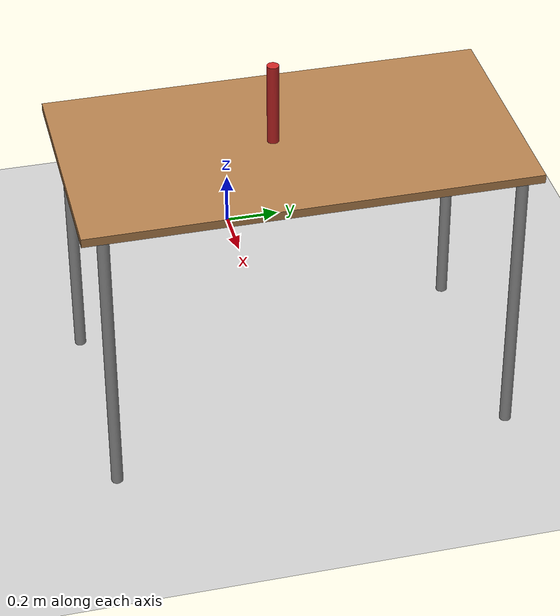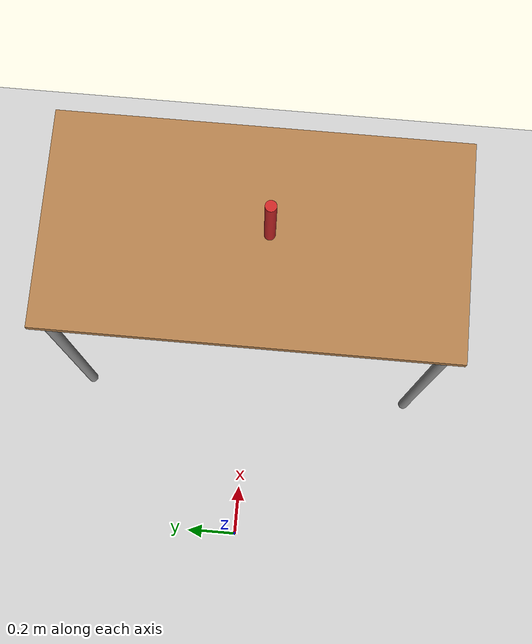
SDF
<?xml version="1.0" ?>
<sdf version="1.4">
  <world name="default">
    <include>
      <uri>model://ground_plane</uri>
    </include>
    <include>
      <uri>model://sun</uri>
    </include>
    <include>
      <uri>model://table</uri>
      <name>table</name>
      <pose>1.0 0.0 0.0 0 0 -1.5708</pose>
    </include>
    <include>
      <uri>model://object</uri>
      <name>object</name>
      <pose>1.0 -0.05 1.1 1.5708 0 1.5708</pose>
    </include>
  </world>
</sdf>

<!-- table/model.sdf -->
<sdf version="1.5">
  <model name="table">
    <static>true</static>
    <link name="link">
      <collision name="surface">
        <pose>0 0 1.0 0 0 0</pose>
        <geometry>
          <box>
            <size>1.5 0.8 0.03</size>
          </box>
        </geometry>
        <surface>
          <friction>
            <ode>
              <mu>0.6</mu>
              <mu2>0.6</mu2>
            </ode>
          </friction>
        </surface>
      </collision>
      <visual name="visual1">
        <pose>0 0 1.0 0 0 0</pose>
        <geometry>
          <box>
            <size>1.5 0.8 0.03</size>
          </box>
        </geometry>
        <material>
          <script>
            <uri>model://media/materials/scripts/gazebo.material</uri>
            <name>Gazebo/Wood</name>
          </script>
        </material>
      </visual>
      <collision name="front_left_leg">
        <pose>0.68 0.38 0.5 0 0 0</pose>
        <geometry>
          <cylinder>
            <radius>0.02</radius>
            <length>1.0</length>
          </cylinder>
        </geometry>
      </collision>
      <visual name="front_left_leg">
        <pose>0.68 0.38 0.5 0 0 0</pose>
        <geometry>
          <cylinder>
            <radius>0.02</radius>
            <length>1.0</length>
          </cylinder>
        </geometry>
        <material>
          <script>
            <uri>model://media/materials/scripts/gazebo.material</uri>
            <name>Gazebo/Grey</name>
          </script>
        </material>
      </visual>
      <collision name="front_right_leg">
        <pose>0.68 -0.38 0.5 0 0 0</pose>
        <geometry>
          <cylinder>
            <radius>0.02</radius>
            <length>1.0</length>
          </cylinder>
        </geometry>
      </collision>
      <visual name="front_right_leg">
        <pose>0.68 -0.38 0.5 0 0 0</pose>
        <geometry>
          <cylinder>
            <radius>0.02</radius>
            <length>1.0</length>
          </cylinder>
        </geometry>
        <material>
          <script>
            <uri>model://media/materials/scripts/gazebo.material</uri>
            <name>Gazebo/Grey</name>
          </script>
        </material>
      </visual>
      <collision name="back_right_leg">
        <pose>-0.68 -0.38 0.5 0 0 0</pose>
        <geometry>
          <cylinder>
            <radius>0.02</radius>
            <length>1.0</length>
          </cylinder>
        </geometry>
      </collision>
      <visual name="back_right_leg">
        <pose>-0.68 -0.38 0.5 0 0 0</pose>
        <geometry>
          <cylinder>
            <radius>0.02</radius>
            <length>1.0</length>
          </cylinder>
        </geometry>
        <material>
          <script>
            <uri>model://media/materials/scripts/gazebo.material</uri>
            <name>Gazebo/Grey</name>
          </script>
        </material>
      </visual>
      <collision name="back_left_leg">
        <pose>-0.68 0.38 0.5 0 0 0</pose>
        <geometry>
          <cylinder>
            <radius>0.02</radius>
            <length>1.0</length>
          </cylinder>
        </geometry>
      </collision>
      <visual name="back_left_leg">
        <pose>-0.68 0.38 0.5 0 0 0</pose>
        <geometry>
          <cylinder>
            <radius>0.02</radius>
            <length>1.0</length>
          </cylinder>
        </geometry>
        <material>
          <script>
            <uri>model://media/materials/scripts/gazebo.material</uri>
            <name>Gazebo/Grey</name>
          </script>
        </material>
      </visual>
    </link>
  </model>
</sdf>

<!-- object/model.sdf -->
<sdf version="1.5">
  <model name="object">
    <link name="link">
      <pose>0 0 0 1.57079632679 0 0</pose>
      <gravity>false</gravity>
      <inertial name="inertial">
        <pose>0 0 0 0 0 0</pose>
        <mass>0.00001</mass>
        <inertia>
          <ixx>0.00001</ixx>
          <ixy>0</ixy>
          <ixz>0</ixz>
          <iyy>0.00001</iyy>
          <iyz>0</iyz>
          <izz>0.00001</izz>
        </inertia>
      </inertial>

      <collision name="collision">
        <geometry>
          <cylinder>
            <length>0.4</length>
            <radius>0.02</radius>
          </cylinder>
        </geometry>
        <surface>
          <contact>
            <ode>
              <min_depth>0.001</min_depth>
              <max_vel>1000</max_vel>
            </ode>
          </contact>
          <friction>
            <ode>
              <mu>100000</mu>
              <mu2>100000</mu2>
            </ode>
          </friction>
        </surface>
      </collision>

      <visual name="visual">
        <cast_shadows>false</cast_shadows>
        <pose>0 0 0 0 0 0</pose>
        <geometry>
          <cylinder>
            <length>0.4</length>
            <radius>0.02</radius>
          </cylinder>
        </geometry>
        <material>
          <script>
            <uri>__default__</uri>
            <name>Gazebo/Red</name>
          </script>
        </material>
      </visual>
    </link>
  </model>
</sdf>
